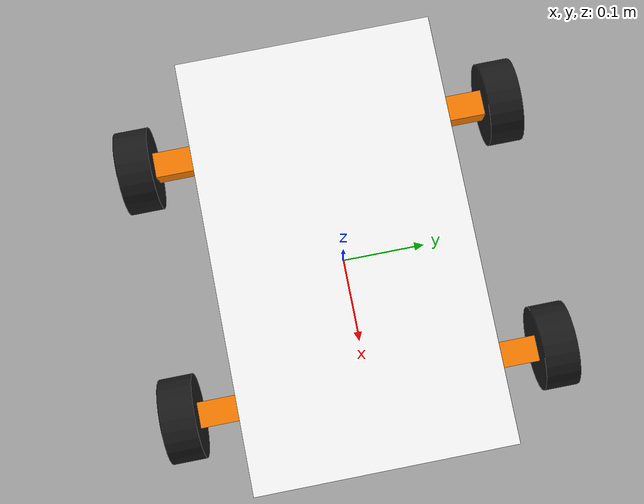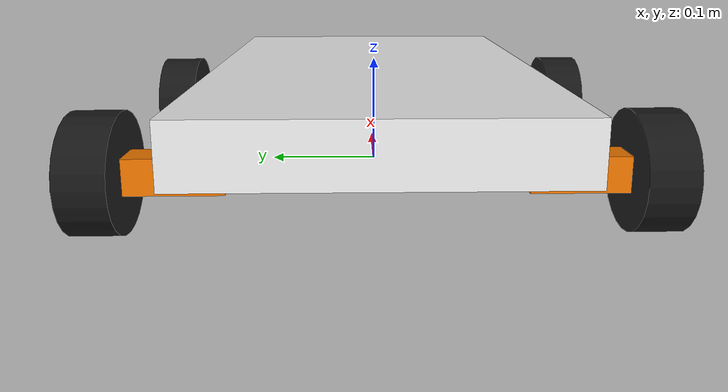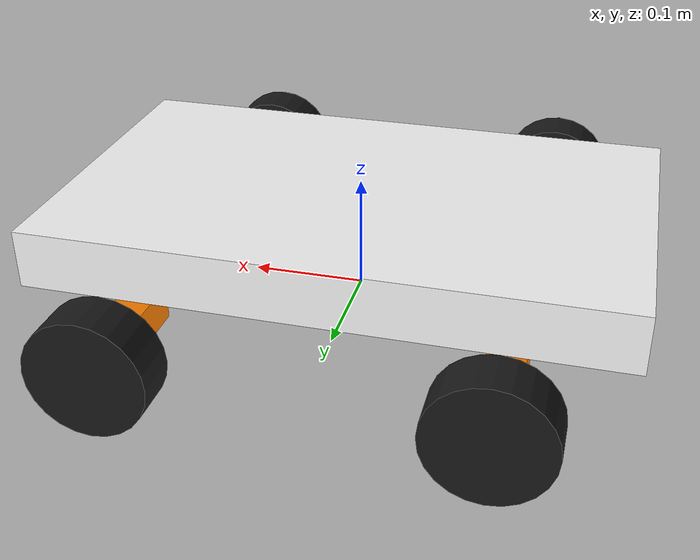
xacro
<?xml version="1.0"?>
<robot xmlns:xacro="http://www.ros.org/wiki/xacro" name="ackermann_robot">

    <xacro:include filename="inertial_macros.xacro"/>

    <!-- Medidas -->

    <xacro:property name="rad_w" value="0.05"/>  <!-- Radio ruedas -->
    <xacro:property name="le_w" value="0.04"/>   <!-- Ancho ruedas -->
    <xacro:property name="lx" value="0.50"/>     <!-- Largo chasis -->
    <xacro:property name="ly" value="0.30"/>     <!-- Ancho chasis -->
    <xacro:property name="lz" value="0.05"/>     <!-- Alto chasis  -->

    <!-- Barras de direccion -->
    <xacro:property name="bhx" value="0.03"/>
    <xacro:property name="bhy" value="0.08"/>
    <xacro:property name="bhz" value="0.03"/>

    <!-- Macros -->

    <xacro:macro name="wheel_macro" params="p_name p_radius p_width">
        <link name="${p_name}">
            <visual>
                <geometry>
                    <cylinder radius="${p_radius}" length="${p_width}"/>
                </geometry>
                <material name="black">
                    <color rgba="0.1 0.1 0.1 1"/>
                </material>
            </visual>
            <collision>
                <geometry>
                    <sphere radius="${p_radius}" />
                </geometry>
            </collision>
            <xacro:inertial_cylinder mass="1.0" length="${p_width}" radius="${p_radius}">
                <origin xyz="0 0 0" rpy="0 0 0"/>
            </xacro:inertial_cylinder>
        </link>
    </xacro:macro>

    <xacro:macro name="barra_horizontal" params="p_name p_x p_y p_z origin">
        <link name="${p_name}">
            <visual>
                <origin xyz="0 ${origin} 0"/>
                <geometry>
                    <box size="${p_x} ${p_y} ${p_z}"/>
                </geometry>
                <material name="orange">
                    <color rgba="1.0 0.5 0.0 1"/>
                </material>
            </visual>
            <collision>
                <origin xyz="0 ${origin} 0"/>
                <geometry>
                    <box size="${p_x} ${p_y} ${p_z}"/>
                </geometry>
            </collision>
            <xacro:inertial_box mass="0.5" x="${p_x}" y="${p_y}" z="${p_z}">
                <origin xyz="0 0 0" rpy="0 0 0"/>
            </xacro:inertial_box>
        </link>
    </xacro:macro>

    <!-- Chasis -->

    <link name="base_link"></link>

    <joint name="base_link_joint" type="fixed">
        <parent link="base_link"/>
        <child link="chassis"/>
        <origin xyz="0 0 ${rad_w + 0.02}"/>  <!-- cambio con base en el r de llanta-->
    </joint>

    <link name="chassis">
        <visual>
            <origin xyz="0 0 0"/>
            <geometry>
                <box size="${lx} ${ly} ${lz}"/>
            </geometry>
            <material name="white">
                <color rgba="1 1 1 1"/>
            </material>
        </visual>
        <collision>
            <origin xyz="0 0 0"/>
            <geometry>
               <box size="${lx} ${ly} ${lz}"/>
            </geometry>
        </collision>
        <xacro:inertial_box mass="5.0" x="${lx}" y="${ly}" z="${lz}">
            <origin xyz="0 0 0" rpy="0 0 0"/>
        </xacro:inertial_box>
    </link>

    <!-- Dirreccion -->

    <!-- Atras derecha -->
    <joint name="rear_right_axle_joint" type="fixed">
        <parent link="chassis"/>
        <child link="rear_right_axle_link"/>
        <origin xyz="${-lx/2 + 0.1} ${(ly/2) + 0.01} ${-(lz+bhz)/2}" rpy="0 0 0"/>
    </joint>

    <xacro:barra_horizontal p_name="rear_right_axle_link" p_x="${bhx}" p_y="${bhy}" p_z="${bhz}" origin="${0.0}"/>

    <joint name="rear_right_wheel_joint" type="continuous">
        <parent link="rear_right_axle_link"/>
        <child link="rear_right_wheel"/>
        <origin xyz="0 ${bhy/2 + le_w/2} 0" rpy="-${pi/2} 0 0"/>
        <axis xyz="0 0 1"/>
        <dynamics damping="0.2" friction="0.1"/>
    </joint>

    <xacro:wheel_macro p_name="rear_right_wheel" p_radius="${rad_w}" p_width="${le_w}"/>

    <!-- Atras izquierda -->
    <joint name="rear_left_axle_joint" type="fixed">
        <parent link="chassis"/>
        <child link="rear_left_axle_link"/>
        <origin xyz="${-lx/2 + 0.1} ${-(ly/2) - 0.01} ${-(lz+bhz)/2}" rpy="0 0 0"/>
    </joint>

    <xacro:barra_horizontal p_name="rear_left_axle_link" p_x="${bhx}" p_y="${bhy}" p_z="${bhz}" origin="${0.0}"/>

    <joint name="rear_left_wheel_joint" type="continuous">
        <parent link="rear_left_axle_link"/>
        <child link="rear_left_wheel"/>
        <origin xyz="0 ${-(bhy/2 + le_w/2)} 0" rpy="-${pi/2} 0 0"/>
        <axis xyz="0 0 1"/>
        <dynamics damping="0.2" friction="0.1"/>
    </joint>

    <xacro:wheel_macro p_name="rear_left_wheel" p_radius="${rad_w}" p_width="${le_w}"/>

    <!-- Direeccion delantera -->

    <!-- Adelante derecha -->
    <joint name="front_right_axle_joint" type="revolute">
        <parent link="chassis"/>
        <child link="front_right_axle_link"/>
        <origin xyz="${lx/2 - 0.1} ${(ly/2) + 0.01} ${-(lz+bhz)/2}" rpy="0 0 0"/>
        <axis xyz="0 0 1"/> <!-- Giro Z -->
        <limit effort="10" lower="-${pi/4}" upper="${pi/4}" velocity="2"/>
        <dynamics damping="0.5" friction="0.1"/>
    </joint>

    <xacro:barra_horizontal p_name="front_right_axle_link" p_x="${bhx}" p_y="${bhy}" p_z="${bhz}" origin="${0.0}"/>

    <joint name="front_right_wheel_joint" type="continuous">
        <parent link="front_right_axle_link"/>
        <child link="front_right_wheel"/>
        <origin xyz="0 ${bhy/2 + le_w/2} 0" rpy="-${pi/2} 0 0"/>
        <axis xyz="0 0 1"/>
        <dynamics damping="0.2" friction="0.1"/>
    </joint>

    <xacro:wheel_macro p_name="front_right_wheel" p_radius="${rad_w}" p_width="${le_w}"/>

    <!-- Delantera Izquierda -->
    <joint name="front_left_axle_joint" type="revolute">
        <parent link="chassis"/>
        <child link="front_left_axle_link"/>
        <origin xyz="${lx/2 - 0.1} ${-(ly/2) - 0.01} ${-(lz+bhz)/2}" rpy="0 0 0"/>
        <axis xyz="0 0 1"/> <!-- Giro Z -->
        <limit effort="10" lower="-${pi/4}" upper="${pi/4}" velocity="2"/>
        <dynamics damping="0.5" friction="0.1"/>
    </joint>

    <xacro:barra_horizontal p_name="front_left_axle_link" p_x="${bhx}" p_y="${bhy}" p_z="${bhz}" origin="${0.0}"/>

    <joint name="front_left_wheel_joint" type="continuous">
        <parent link="front_left_axle_link"/>
        <child link="front_left_wheel"/>
        <origin xyz="0 ${-(bhy/2 + le_w/2)} 0" rpy="-${pi/2} 0 0"/>
        <axis xyz="0 0 1"/>
        <dynamics damping="0.2" friction="0.1"/>
    </joint>

    <xacro:wheel_macro p_name="front_left_wheel" p_radius="${rad_w}" p_width="${le_w}"/>

</robot>
